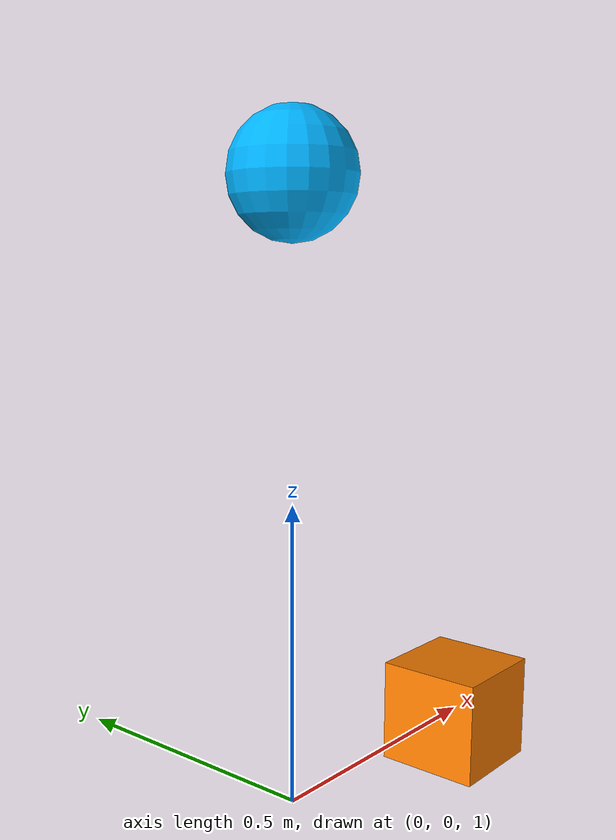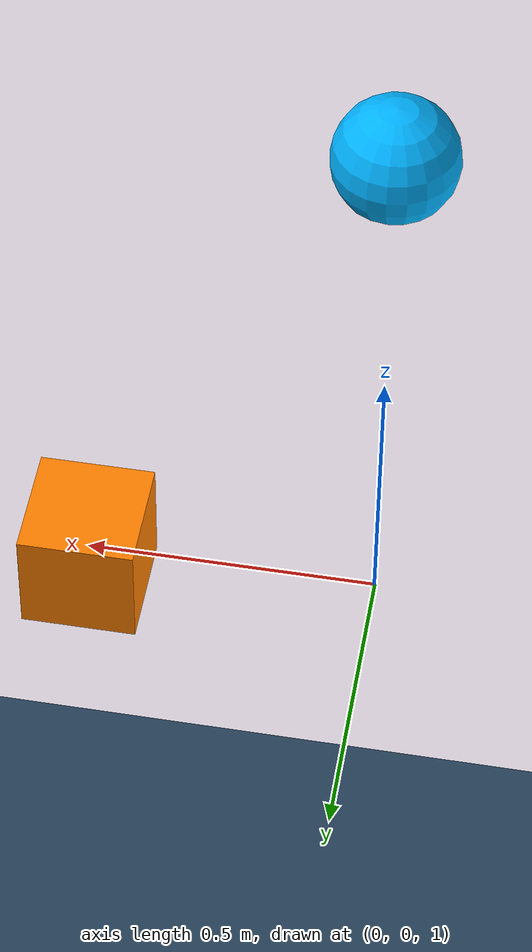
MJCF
<mujoco model="simple_scene">
    <option gravity="0 0 -9.81" timestep="0.002"/>

    <asset>
        <texture type="skybox" builtin="gradient" rgb1="0.3 0.5 0.7" rgb2="0 0 0" width="512" height="512"/>
        <texture name="grid" type="2d" builtin="checker" rgb1=".1 .2 .3" rgb2=".2 .3 .4" width="300" height="300" mark="edge" markrgb=".2 .3 .4"/>
        <material name="grid" texture="grid" texrepeat="1 1" texuniform="true" reflectance=".2"/>
    </asset>

    <worldbody>
        <light diffuse=".5 .5 .5" pos="0 0 3" dir="0 0 -1"/>
        <geom name="floor" type="plane" size="5 5 .05" material="grid" condim="3"/>

        <body name="box1" pos="0.5 0 1">
            <joint type="free"/>
            <geom type="box" size="0.1 0.1 0.1" rgba="1 0.5 0 1" mass="1"/>
        </body>

        <body name="ball1" pos="0 0 2">
            <joint type="free"/>
            <geom type="sphere" size="0.1" rgba="0 0.7 1 1" mass="0.5"/>
        </body>
    </worldbody>
</mujoco>
